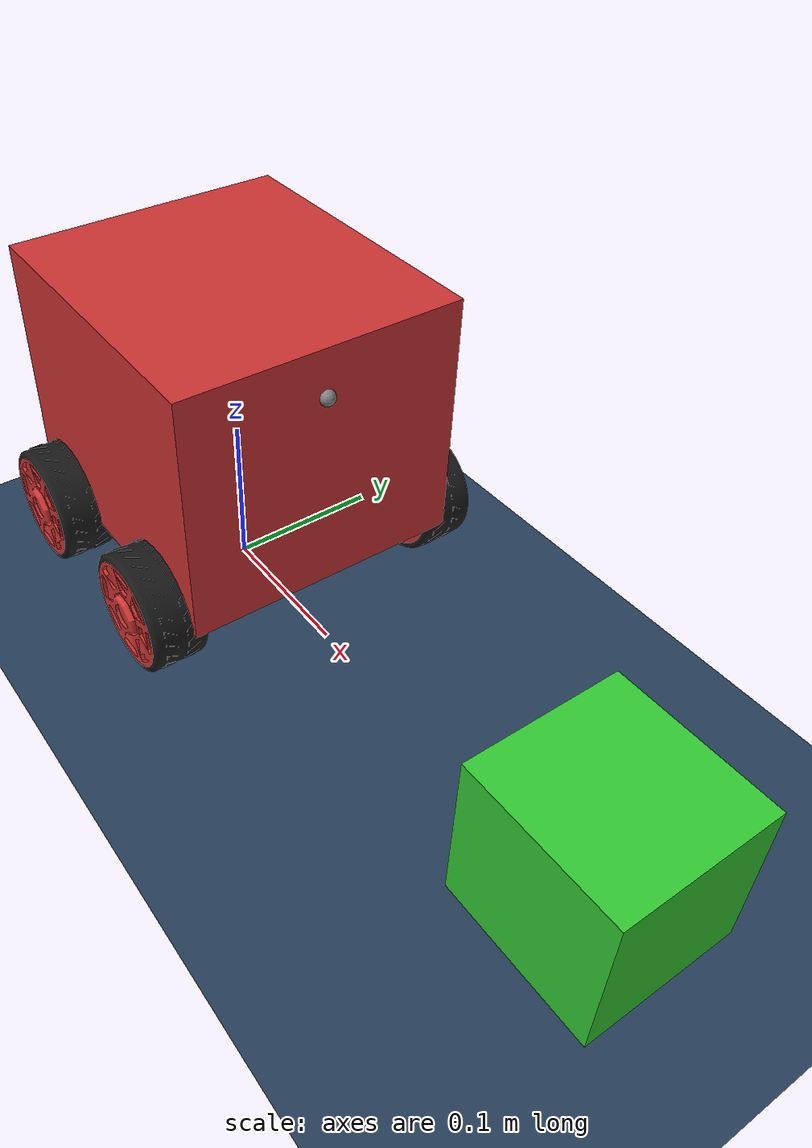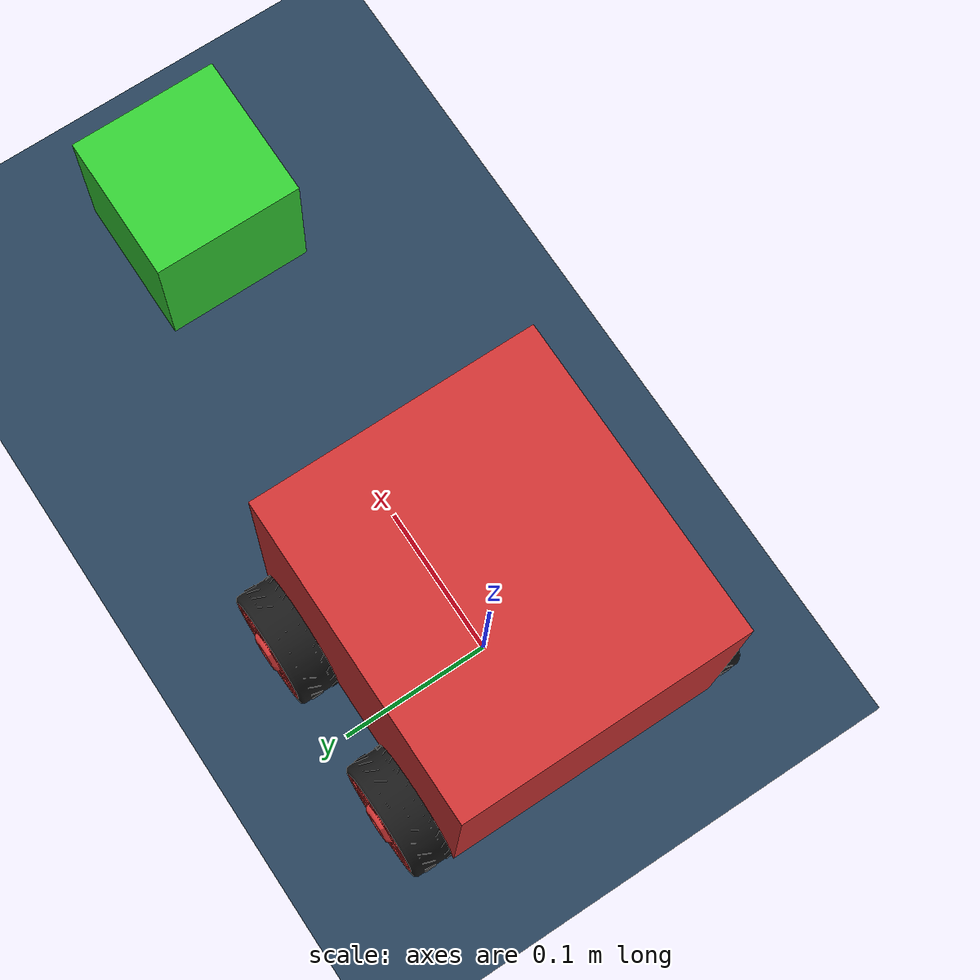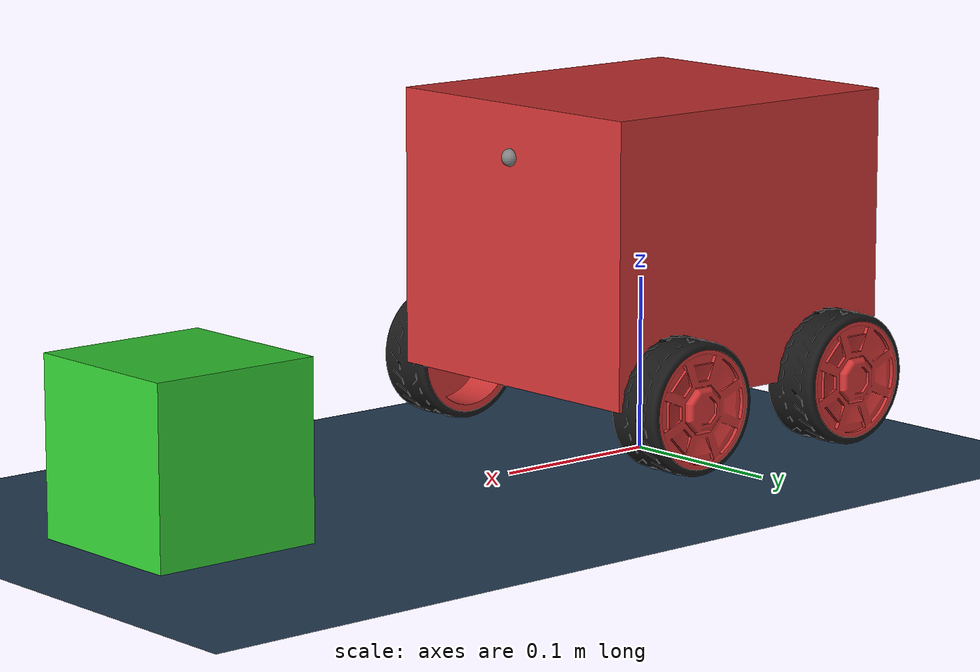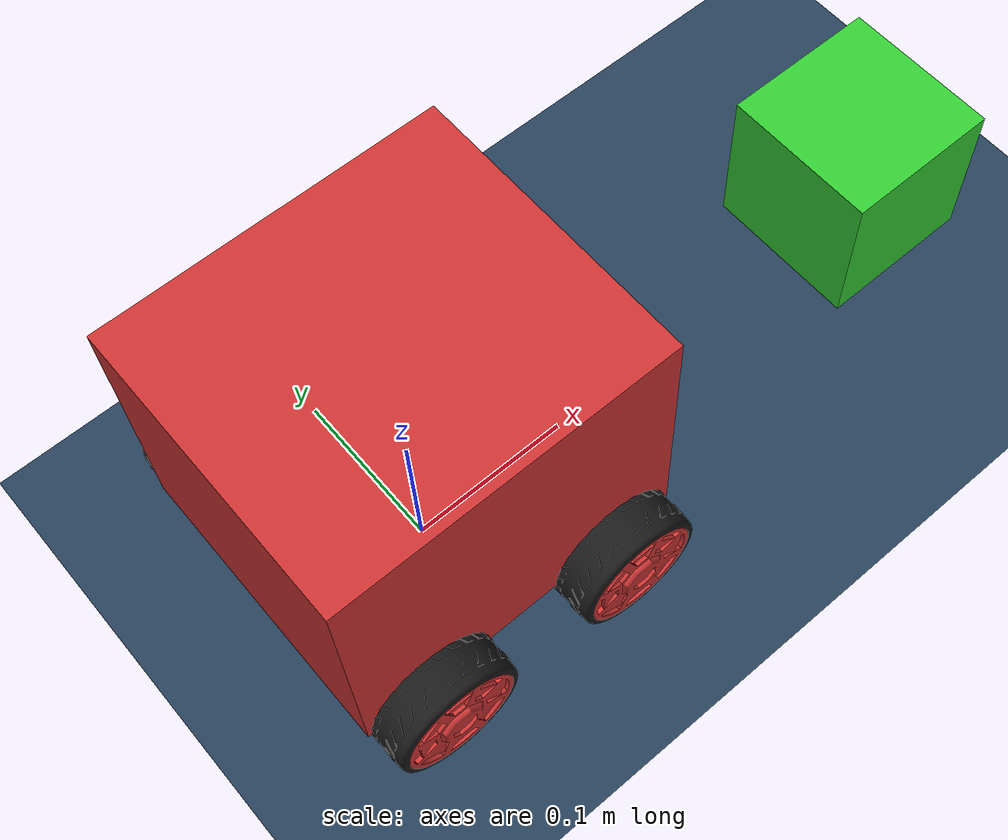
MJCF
<!-- This file will eventually be camera only xml. -->

<mujoco model="zedmini_model">

    <compiler angle="degree" meshdir = "assets"/>

    <default>
        <default class="camera">
            <site size="0.005" rgba="1 0 0 1" group="5"/>
        </default>
    </default>

    <asset>
        <texture type="skybox" builtin="gradient" rgb1="0.3 0.5 0.7" rgb2="0 0 0" width="512" height="3072"/>
        <texture type="2d" name="groundplane" builtin="checker" mark="edge" rgb1="0.2 0.3 0.4" rgb2="0.1 0.2 0.3"
            markrgb="0.8 0.8 0.8" width="300" height="300"/>
        <material name="groundplane" texture="groundplane" texuniform="true" texrepeat="5 5" reflectance="0.2"/>
        <mesh name="zedm_mesh" file="zedmini_camera.obj" scale="0.001 0.001 0.001"/>

        <mesh name = "ring_mesh" file = "ring.obj" scale = "0.00133 0.00133 0.00133"/>
        <mesh name = "tire_mesh" file = "tire.obj" scale = "0.00133 0.00133 0.00133"/>

        <material name = "tire_rubber" rgba = "0.1 0.1 0.1 1" />
        <material name = "ring_metal" rgba = "0.8 0.2 0.2 1" />
    </asset>

    <visual>
        <headlight diffuse="0.6 0.6 0.6" ambient="0.3 0.3 0.3" specular="0 0 0"/>
        <rgba haze="0.15 0.25 0.35 1"/>
        <global azimuth="150" elevation="-20"/>
    </visual>

    <worldbody>
        <light pos="0 0 3" dir="0 0 -1" directional="false"/>
        <geom name="floor" size="0 0 .125" type="plane" material="groundplane" conaffinity="15" condim="3"/>

        <!-- Rover Body-->
        <body name="rover_chassis" pos="0 0 0.13">
            <freejoint name="rover_root"/>
            <geom type="box" size="0.1 0.09 0.08" rgba="0.8 0.2 0.2 1" mass="1.0"/>
            <geom type="sphere" size="0.015" pos="0.08 0 -0.015" friction="0 0 0" rgba="0.2 0.2 0.2 1"/>

            <body name="left_wheel_back" pos="-0.06 0.08 -0.08">
                <joint name="left_motor_back_joint" type="hinge" axis="0 1 0"/>
                <geom type="mesh" mesh="ring_mesh" euler="-90 0 0" material="ring_metal" />
                <geom type="mesh" mesh="tire_mesh" euler="-90 0 0" material="tire_rubber" />
                <geom type="cylinder" size="0.04 0.05" zaxis="0 1 0" rgba="0 0 0 0" group="0"/>
            </body>

            <body name="right_wheel_back" pos="-0.06 -0.08 -0.08">
                <joint name="right_motor_back_joint" type="hinge" axis="0 1 0"/>
                <geom type="mesh" mesh="ring_mesh" euler="90 0 0" material="ring_metal" />
                <geom type="mesh" mesh="tire_mesh" euler="90 0 0" material="tire_rubber" />
                <geom type="cylinder" size="0.04 0.05" zaxis="0 1 0" rgba="0 0 0 0" group="0"/>
            </body>

            <body name="left_wheel_front" pos="0.06 0.08 -0.08">
                <joint name="left_motor_front_joint" type="hinge" axis="0 1 0"/>
                <geom type="mesh" mesh="ring_mesh" euler="-90 0 0" material="ring_metal" />
                <geom type="mesh" mesh="tire_mesh" euler="-90 0 0" material="tire_rubber" />
                <geom type="cylinder" size="0.04 0.05" zaxis="0 1 0" rgba="0 0 0 0" group="0"/>
            </body>

            <body name="right_wheel_front" pos="0.06 -0.08 -0.08">
                <joint name="right_motor_front_joint" type="hinge" axis="0 1 0"/>
                <geom type="mesh" mesh="ring_mesh" euler="90 0 0" material="ring_metal" />
                <geom type="mesh" mesh="tire_mesh" euler="90 0 0" material="tire_rubber" />
                <geom type="cylinder" size="0.04 0.05" zaxis="0 1 0" rgba="0 0 0 0" group="0"/>
            </body>

            <body name="zed_mini" euler="0 0 0" pos="0.1 0 0.05">
                <geom type="mesh" euler = "90 0 -20" mesh="zedm_mesh" group="4"/>
                <camera name="perspective" euler="0 -60 0" resolution="64 64" fovy="60" output = "depth" mode = "fixed"
                    projection = "perspective"/>
                <site name = "zedm_site"  size="0.005"  type = "sphere"/>
            </body>
        </body>

        <!-- Test Obstacle for Depth -->
        <body name = "obstacle" pos="0.33 0 0.05">
            <geom type="box" size="0.05 0.05 0.05" rgba="0.2 0.8 0.2 1"/>
        </body>
    </worldbody>

    <!-- Actuators -->
    <actuator>
        <velocity name="left_drive_back" joint="left_motor_back_joint"/>
        <velocity name="right_drive_back" joint="right_motor_back_joint"/>
        <velocity name="left_drive_front" joint="left_motor_front_joint"/>
        <velocity name="right_drive_front" joint="right_motor_front_joint"/>
    </actuator>

    <!-- Sensors -->
    <sensor>
        <rangefinder name ="zedm_perspective" camera="perspective" data = "dist point normal depth"/>
        <gyro name = "zedm_gyro" site = "zedm_site"/>
        <accelerometer name = "zedm_accel" site = "zedm_site"/>
    </sensor>

</mujoco>
